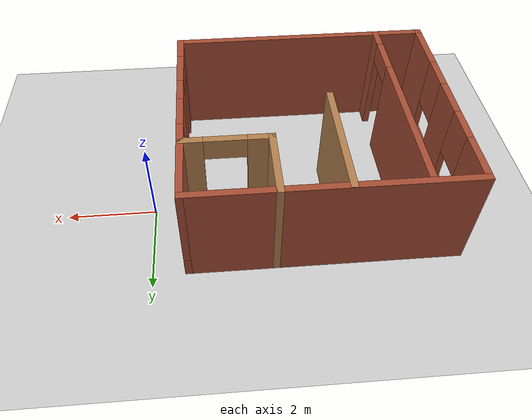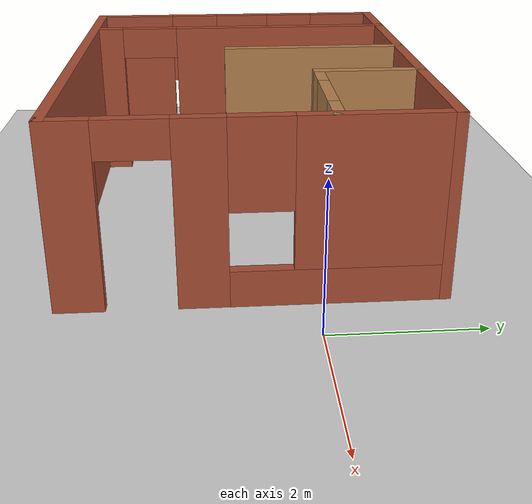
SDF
<sdf version="1.7">
 <world name="default">
  <light name="sun" type="directional">
   <pose>0 0 10 0 -0 0</pose>
   <diffuse>0.8 0.8 0.8 1</diffuse>
   <specular>0.2 0.2 0.2 1</specular>
   <attenuation>
    <range>1000</range>
    <constant>0.9</constant>
    <linear>0.01</linear>
    <quadratic>0.001</quadratic>
   </attenuation>
   <direction>-0.5 0.1 -0.9</direction>
   <spot><inner_angle>0</inner_angle><outer_angle>0</outer_angle><falloff>0</falloff></spot>
  </light>
  <model name="ground_plane">
   <static>1</static>
   <link name="link">
    <collision name="collision">
     <geometry><plane><normal>0 0 1</normal><size>100 100</size></plane></geometry>
     <surface><friction><ode><mu>100</mu><mu2>50</mu2></ode></friction></surface>
    </collision>
    <visual name="visual">
     <cast_shadows>0</cast_shadows>
     <geometry><plane><normal>0 0 1</normal><size>100 100</size></plane></geometry>
     <material>
      <script><uri>file://media/materials/scripts/gazebo.material</uri><name>Gazebo/Grey</name></script>
     </material>
    </visual>
   </link>
  </model>
  <gravity>0 0 -9.8</gravity>
  <magnetic_field>6e-06 2.3e-05 -4.2e-05</magnetic_field>
  <atmosphere type="adiabatic"/>
  <physics type="ode">
   <max_step_size>0.001</max_step_size>
   <real_time_factor>1</real_time_factor>
   <real_time_update_rate>1000</real_time_update_rate>
  </physics>
  <scene><ambient>0.4 0.4 0.4 1</ambient><background>0.7 0.7 0.7 1</background><shadows>1</shadows></scene>
  <audio><device>default</device></audio>
  <spherical_coordinates>
   <surface_model>EARTH_WGS84</surface_model>
   <latitude_deg>0</latitude_deg>
   <longitude_deg>0</longitude_deg>
   <elevation>0</elevation>
   <heading_deg>0</heading_deg>
  </spherical_coordinates>
  <model name="house">
   <pose>-3.68553 1.03527 0 0 -0 0</pose>
   <link name="Wall_16">
    <pose>-2.925 -1.80974 0 0 -0 -1.5708</pose>
    <visual name="Wall_16_Visual_0">
     <pose>-1.92904 0 1.25 0 -0 0</pose>
     <geometry><box><size>1.14192 0.15 2.5</size></box></geometry>
     <material>
      <script><uri>file://media/materials/scripts/gazebo.material</uri><name>Gazebo/Bricks</name></script>
      <ambient>1 1 1 1</ambient>
     </material>
     <meta><layer>0</layer></meta>
    </visual>
    <collision name="Wall_16_Collision_0">
     <geometry><box><size>1.14192 0.15 2.5</size></box></geometry>
     <pose>-1.92904 0 1.25 0 -0 0</pose>
    </collision>
    <visual name="Wall_16_Visual_1">
     <pose>0.570959 0 0.25 0 -0 0</pose>
     <geometry><box><size>3.85808 0.15 0.5</size></box></geometry>
     <material>
      <script><uri>file://media/materials/scripts/gazebo.material</uri><name>Gazebo/Bricks</name></script>
      <ambient>1 1 1 1</ambient>
     </material>
     <meta><layer>0</layer></meta>
    </visual>
    <collision name="Wall_16_Collision_1">
     <geometry><box><size>3.85808 0.15 0.5</size></box></geometry>
     <pose>0.570959 0 0.25 0 -0 0</pose>
    </collision>
    <visual name="Wall_16_Visual_2">
     <pose>-0.096078 0 1.5 0 -0 0</pose>
     <geometry><box><size>0.924008 0.15 2</size></box></geometry>
     <material>
      <script><uri>file://media/materials/scripts/gazebo.material</uri><name>Gazebo/Bricks</name></script>
      <ambient>1 1 1 1</ambient>
     </material>
     <meta><layer>0</layer></meta>
    </visual>
    <collision name="Wall_16_Collision_2">
     <geometry><box><size>0.924008 0.15 2</size></box></geometry>
     <pose>-0.096078 0 1.5 0 -0 0</pose>
    </collision>
    <visual name="Wall_16_Visual_3">
     <pose>1.83296 0 1.5 0 -0 0</pose>
     <geometry><box><size>1.33407 0.15 2</size></box></geometry>
     <material>
      <script><uri>file://media/materials/scripts/gazebo.material</uri><name>Gazebo/Bricks</name></script>
      <ambient>1 1 1 1</ambient>
     </material>
     <meta><layer>0</layer></meta>
    </visual>
    <collision name="Wall_16_Collision_3">
     <geometry><box><size>1.33407 0.15 2</size></box></geometry>
     <pose>1.83296 0 1.5 0 -0 0</pose>
    </collision>
    <visual name="Wall_16_Visual_4">
     <pose>-0.958082 0 1.9 0 -0 0</pose>
     <geometry><box><size>0.8 0.15 1.2</size></box></geometry>
     <material>
      <script><uri>file://media/materials/scripts/gazebo.material</uri><name>Gazebo/Bricks</name></script>
      <ambient>1 1 1 1</ambient>
     </material>
     <meta><layer>0</layer></meta>
    </visual>
    <collision name="Wall_16_Collision_4">
     <geometry><box><size>0.8 0.15 1.2</size></box></geometry>
     <pose>-0.958082 0 1.9 0 -0 0</pose>
    </collision>
    <visual name="Wall_16_Visual_5">
     <pose>0.765926 0 1.9 0 -0 0</pose>
     <geometry><box><size>0.8 0.15 1.2</size></box></geometry>
     <material>
      <script><uri>file://media/materials/scripts/gazebo.material</uri><name>Gazebo/Bricks</name></script>
      <ambient>1 1 1 1</ambient>
     </material>
     <meta><layer>0</layer></meta>
    </visual>
    <collision name="Wall_16_Collision_5">
     <geometry><box><size>0.8 0.15 1.2</size></box></geometry>
     <pose>0.765926 0 1.9 0 -0 0</pose>
    </collision>
   </link>
   <link name="Wall_17">
    <collision name="Wall_17_Collision">
     <geometry><box><size>6 0.15 2.5</size></box></geometry>
     <pose>0 0 1.25 0 -0 0</pose>
    </collision>
    <visual name="Wall_17_Visual">
     <pose>0 0 1.25 0 -0 0</pose>
     <geometry><box><size>6 0.15 2.5</size></box></geometry>
     <material>
      <script><uri>file://media/materials/scripts/gazebo.material</uri><name>Gazebo/Bricks</name></script>
      <ambient>1 1 1 1</ambient>
     </material>
     <meta><layer>0</layer></meta>
    </visual>
    <pose>-0 -4.23474 0 0 -0 0</pose>
   </link>
   <link name="Wall_18">
    <pose>2.925 -1.80974 0 0 -0 1.5708</pose>
    <visual name="Wall_18_Visual_0">
     <pose>-2.17554 0 1.25 0 -0 0</pose>
     <geometry><box><size>0.648913 0.15 2.5</size></box></geometry>
     <material>
      <script><uri>file://media/materials/scripts/gazebo.material</uri><name>Gazebo/Bricks</name></script>
      <ambient>1 1 1 1</ambient>
     </material>
     <meta><layer>0</layer></meta>
    </visual>
    <collision name="Wall_18_Collision_0">
     <geometry><box><size>0.648913 0.15 2.5</size></box></geometry>
     <pose>-2.17554 0 1.25 0 -0 0</pose>
    </collision>
    <visual name="Wall_18_Visual_1">
     <pose>-0.627504 0 1.25 0 -0 0</pose>
     <geometry><box><size>0.647165 0.15 2.5</size></box></geometry>
     <material>
      <script><uri>file://media/materials/scripts/gazebo.material</uri><name>Gazebo/Bricks</name></script>
      <ambient>1 1 1 1</ambient>
     </material>
     <meta><layer>0</layer></meta>
    </visual>
    <collision name="Wall_18_Collision_1">
     <geometry><box><size>0.647165 0.15 2.5</size></box></geometry>
     <pose>-0.627504 0 1.25 0 -0 0</pose>
    </collision>
    <visual name="Wall_18_Visual_2">
     <pose>1.09804 0 0.25 0 -0 0</pose>
     <geometry><box><size>2.80392 0.15 0.5</size></box></geometry>
     <material>
      <script><uri>file://media/materials/scripts/gazebo.material</uri><name>Gazebo/Bricks</name></script>
      <ambient>1 1 1 1</ambient>
     </material>
     <meta><layer>0</layer></meta>
    </visual>
    <collision name="Wall_18_Collision_2">
     <geometry><box><size>2.80392 0.15 0.5</size></box></geometry>
     <pose>1.09804 0 0.25 0 -0 0</pose>
    </collision>
    <visual name="Wall_18_Visual_3">
     <pose>1.49804 0 1.5 0 -0 0</pose>
     <geometry><box><size>2.00392 0.15 2</size></box></geometry>
     <material>
      <script><uri>file://media/materials/scripts/gazebo.material</uri><name>Gazebo/Bricks</name></script>
      <ambient>1 1 1 1</ambient>
     </material>
     <meta><layer>0</layer></meta>
    </visual>
    <collision name="Wall_18_Collision_3">
     <geometry><box><size>2.00392 0.15 2</size></box></geometry>
     <pose>1.49804 0 1.5 0 -0 0</pose>
    </collision>
    <visual name="Wall_18_Visual_4">
     <pose>0.096078 0 1.9 0 -0 0</pose>
     <geometry><box><size>0.8 0.15 1.2</size></box></geometry>
     <material>
      <script><uri>file://media/materials/scripts/gazebo.material</uri><name>Gazebo/Bricks</name></script>
      <ambient>1 1 1 1</ambient>
     </material>
     <meta><layer>0</layer></meta>
    </visual>
    <collision name="Wall_18_Collision_4">
     <geometry><box><size>0.8 0.15 1.2</size></box></geometry>
     <pose>0.096078 0 1.9 0 -0 0</pose>
    </collision>
    <visual name="Wall_18_Visual_5">
     <pose>-1.40109 0 2.25 0 -0 0</pose>
     <geometry><box><size>0.9 0.15 0.5</size></box></geometry>
     <material>
      <script><uri>file://media/materials/scripts/gazebo.material</uri><name>Gazebo/Bricks</name></script>
      <ambient>1 1 1 1</ambient>
     </material>
     <meta><layer>0</layer></meta>
    </visual>
    <collision name="Wall_18_Collision_5">
     <geometry><box><size>0.9 0.15 0.5</size></box></geometry>
     <pose>-1.40109 0 2.25 0 -0 0</pose>
    </collision>
   </link>
   <link name="Wall_19">
    <collision name="Wall_19_Collision">
     <geometry><box><size>6 0.15 2.5</size></box></geometry>
     <pose>0 0 1.25 0 -0 0</pose>
    </collision>
    <visual name="Wall_19_Visual">
     <pose>0 0 1.25 0 -0 0</pose>
     <geometry><box><size>6 0.15 2.5</size></box></geometry>
     <material>
      <script><uri>file://media/materials/scripts/gazebo.material</uri><name>Gazebo/Bricks</name></script>
      <ambient>1 1 1 1</ambient>
     </material>
     <meta><layer>0</layer></meta>
    </visual>
    <pose>-0 0.615258 0 0 -0 3.14159</pose>
   </link>
   <link name="Wall_25">
    <collision name="Wall_25_Collision">
     <geometry><box><size>2.75 0.15 2.5</size></box></geometry>
     <pose>0 0 1.25 0 -0 0</pose>
    </collision>
    <visual name="Wall_25_Visual">
     <pose>0 0 1.25 0 -0 0</pose>
     <geometry><box><size>2.75 0.15 2.5</size></box></geometry>
     <material>
      <script><uri>file://media/materials/scripts/gazebo.material</uri><name>Gazebo/Wood</name></script>
      <ambient>1 1 1 1</ambient>
     </material>
     <meta><layer>0</layer></meta>
    </visual>
    <pose>-0.338989 -0.699865 0 0 -0 -1.5708</pose>
   </link>
   <link name="Wall_27">
    <pose>-1.8664 -1.80974 0 0 -0 -1.5708</pose>
    <visual name="Wall_27_Visual_0">
     <pose>-0.721526 0 1.25 0 -0 0</pose>
     <geometry><box><size>3.55695 0.15 2.5</size></box></geometry>
     <material>
      <script><uri>file://media/materials/scripts/gazebo.material</uri><name>Gazebo/Bricks</name></script>
      <ambient>1 1 1 1</ambient>
     </material>
     <meta><layer>0</layer></meta>
    </visual>
    <collision name="Wall_27_Collision_0">
     <geometry><box><size>3.55695 0.15 2.5</size></box></geometry>
     <pose>-0.721526 0 1.25 0 -0 0</pose>
    </collision>
    <visual name="Wall_27_Visual_1">
     <pose>2.22847 0 1.25 0 -0 0</pose>
     <geometry><box><size>0.543053 0.15 2.5</size></box></geometry>
     <material>
      <script><uri>file://media/materials/scripts/gazebo.material</uri><name>Gazebo/Bricks</name></script>
      <ambient>1 1 1 1</ambient>
     </material>
     <meta><layer>0</layer></meta>
    </visual>
    <collision name="Wall_27_Collision_1">
     <geometry><box><size>0.543053 0.15 2.5</size></box></geometry>
     <pose>2.22847 0 1.25 0 -0 0</pose>
    </collision>
    <visual name="Wall_27_Visual_2">
     <pose>1.50695 0 2.25 0 -0 0</pose>
     <geometry><box><size>0.9 0.15 0.5</size></box></geometry>
     <material>
      <script><uri>file://media/materials/scripts/gazebo.material</uri><name>Gazebo/Bricks</name></script>
      <ambient>1 1 1 1</ambient>
     </material>
     <meta><layer>0</layer></meta>
    </visual>
    <collision name="Wall_27_Collision_2">
     <geometry><box><size>0.9 0.15 0.5</size></box></geometry>
     <pose>1.50695 0 2.25 0 -0 0</pose>
    </collision>
   </link>
   <link name="Wall_29">
    <collision name="Wall_29_Collision">
     <geometry><box><size>1.57853 0.15 2.5</size></box></geometry>
     <pose>0 0 1.25 0 -0 0</pose>
    </collision>
    <visual name="Wall_29_Visual">
     <pose>0 0 1.25 0 -0 0</pose>
     <geometry><box><size>1.57853 0.15 2.5</size></box></geometry>
     <material>
      <script><uri>file://media/materials/scripts/gazebo.material</uri><name>Gazebo/Wood</name></script>
      <ambient>1 1 1 1</ambient>
     </material>
     <meta><layer>0</layer></meta>
    </visual>
    <pose>1.05232 -0.098967 0 0 -0 -1.5708</pose>
   </link>
   <link name="Wall_30">
    <pose>1.99244 -0.813192 0 0 -0 0</pose>
    <visual name="Wall_30_Visual_0">
     <pose>-0.718691 0 1.25 0 -0 0</pose>
     <geometry><box><size>0.562618 0.15 2.5</size></box></geometry>
     <material>
      <script><uri>file://media/materials/scripts/gazebo.material</uri><name>Gazebo/Wood</name></script>
      <ambient>1 1 1 1</ambient>
     </material>
     <meta><layer>0</layer></meta>
    </visual>
    <collision name="Wall_30_Collision_0">
     <geometry><box><size>0.562618 0.15 2.5</size></box></geometry>
     <pose>-0.718691 0 1.25 0 -0 0</pose>
    </collision>
    <visual name="Wall_30_Visual_1">
     <pose>0.731309 0 1.25 0 -0 0</pose>
     <geometry><box><size>0.537382 0.15 2.5</size></box></geometry>
     <material>
      <script><uri>file://media/materials/scripts/gazebo.material</uri><name>Gazebo/Wood</name></script>
      <ambient>1 1 1 1</ambient>
     </material>
     <meta><layer>0</layer></meta>
    </visual>
    <collision name="Wall_30_Collision_1">
     <geometry><box><size>0.537382 0.15 2.5</size></box></geometry>
     <pose>0.731309 0 1.25 0 -0 0</pose>
    </collision>
    <visual name="Wall_30_Visual_2">
     <pose>0.012618 0 2.25 0 -0 0</pose>
     <geometry><box><size>0.9 0.15 0.5</size></box></geometry>
     <material>
      <script><uri>file://media/materials/scripts/gazebo.material</uri><name>Gazebo/Wood</name></script>
      <ambient>1 1 1 1</ambient>
     </material>
     <meta><layer>0</layer></meta>
    </visual>
    <collision name="Wall_30_Collision_2">
     <geometry><box><size>0.9 0.15 0.5</size></box></geometry>
     <pose>0.012618 0 2.25 0 -0 0</pose>
    </collision>
   </link>
   <static>1</static>
  </model>
 </world>
</sdf>
